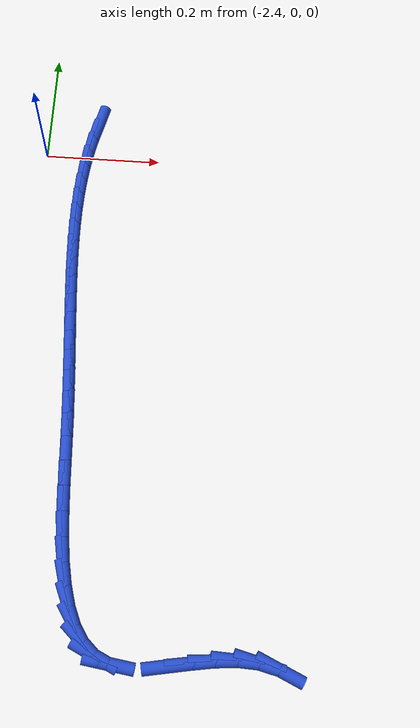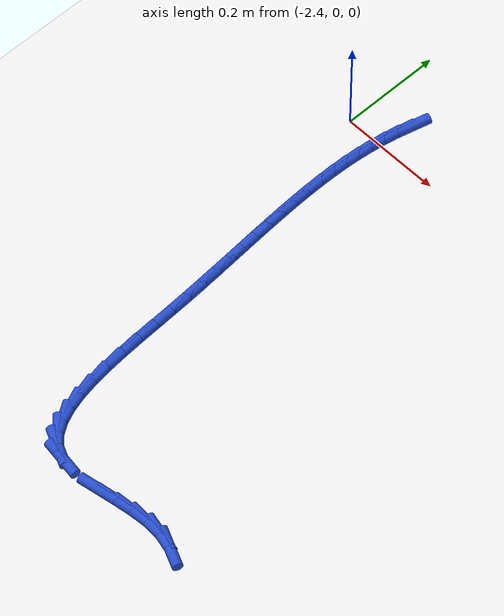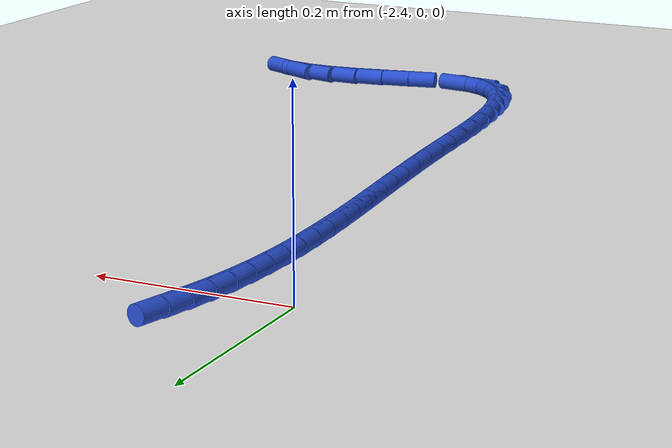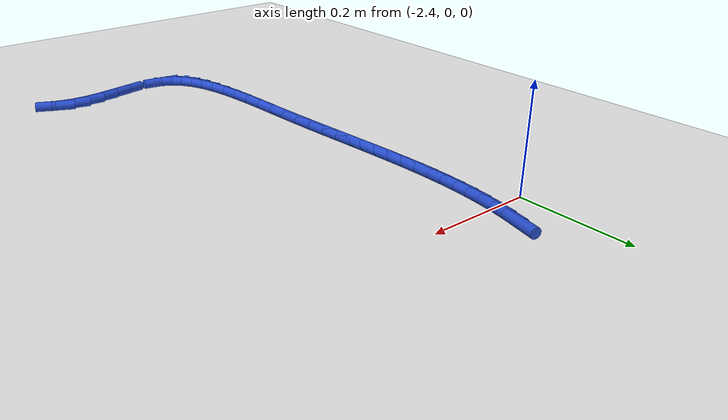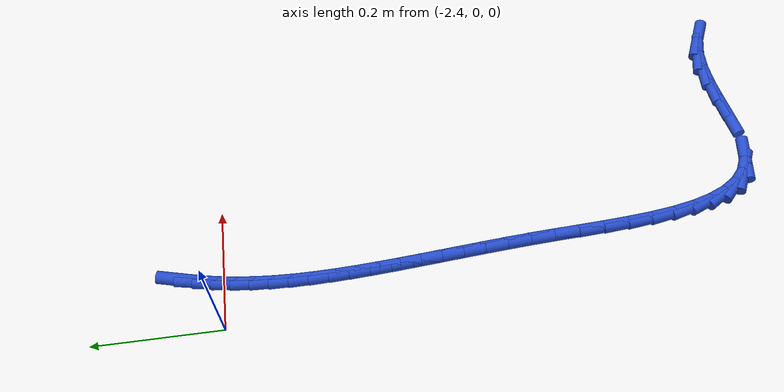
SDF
<sdf version="1.6">
 <world name="default">
  <model name="ground_plane">
   <static>1</static>
   <link name="link">
    <collision name="collision">
     <geometry><plane><normal>0 0 1</normal><size>100 100</size></plane></geometry>
     <surface><friction><ode><mu>100</mu><mu2>50</mu2></ode></friction></surface>
    </collision>
    <visual name="visual">
     <cast_shadows>0</cast_shadows>
     <geometry><plane><normal>0 0 1</normal><size>100 100</size></plane></geometry>
     <material>
      <script><uri>file://media/materials/scripts/gazebo.material</uri><name>Gazebo/WhiteGlow</name></script>
     </material>
    </visual>
   </link>
  </model>
  <model name="line">
   <link name="link_145">
    <pose>-2.3132194270475033 0.06085660251991254 0.01 0 1.57 1.323140194604401</pose>
    <collision name="collision">
     <geometry><cylinder><radius>0.01</radius><length>0.08</length></cylinder></geometry>
    </collision>
    <visual name="visual">
     <material>
      <script><name>Gazebo/Blue</name><uri>file://media/materials/scripts/gazebo.material</uri></script>
     </material>
     <geometry><cylinder><radius>0.01</radius><length>0.08</length></cylinder></geometry>
    </visual>
   </link>
   <link name="link_146">
    <pose>-2.3201641512256517 0.03339045982823994 0.01 0 1.57 1.372035816545154</pose>
    <collision name="collision">
     <geometry><cylinder><radius>0.01</radius><length>0.08</length></cylinder></geometry>
    </collision>
    <visual name="visual">
     <material>
      <script><name>Gazebo/Blue</name><uri>file://media/materials/scripts/gazebo.material</uri></script>
     </material>
     <geometry><cylinder><radius>0.01</radius><length>0.08</length></cylinder></geometry>
    </visual>
   </link>
   <link name="link_147">
    <pose>-2.32573927350403 0.005711361306745023 0.01 0 1.57 1.4177593383744724</pose>
    <collision name="collision">
     <geometry><cylinder><radius>0.01</radius><length>0.08</length></cylinder></geometry>
    </collision>
    <visual name="visual">
     <material>
      <script><name>Gazebo/Blue</name><uri>file://media/materials/scripts/gazebo.material</uri></script>
     </material>
     <geometry><cylinder><radius>0.01</radius><length>0.08</length></cylinder></geometry>
    </visual>
   </link>
   <link name="link_148">
    <pose>-2.3300514669702235 -0.022245778429164635 0.01 0 1.57 1.4598171445845982</pose>
    <collision name="collision">
     <geometry><cylinder><radius>0.01</radius><length>0.08</length></cylinder></geometry>
    </collision>
    <visual name="visual">
     <material>
      <script><name>Gazebo/Blue</name><uri>file://media/materials/scripts/gazebo.material</uri></script>
     </material>
     <geometry><cylinder><radius>0.01</radius><length>0.08</length></cylinder></geometry>
    </visual>
   </link>
   <link name="link_149">
    <pose>-2.333204308811531 -0.05053835793186363 0.01 0 1.57 1.4978204522429994</pose>
    <collision name="collision">
     <geometry><cylinder><radius>0.01</radius><length>0.08</length></cylinder></geometry>
    </collision>
    <visual name="visual">
     <material>
      <script><name>Gazebo/Blue</name><uri>file://media/materials/scripts/gazebo.material</uri></script>
     </material>
     <geometry><cylinder><radius>0.01</radius><length>0.08</length></cylinder></geometry>
    </visual>
   </link>
   <link name="link_150">
    <pose>-2.3353013762152512 -0.07922377575372658 0.01 0 1.57 1.5315220608451527</pose>
    <collision name="collision">
     <geometry><cylinder><radius>0.01</radius><length>0.08</length></cylinder></geometry>
    </collision>
    <visual name="visual">
     <material>
      <script><name>Gazebo/Blue</name><uri>file://media/materials/scripts/gazebo.material</uri></script>
     </material>
     <geometry><cylinder><radius>0.01</radius><length>0.08</length></cylinder></geometry>
    </visual>
   </link>
   <link name="link_151">
    <pose>-2.336446246368685 -0.10835943044712815 0.01 0 1.57 1.5608028265107694</pose>
    <collision name="collision">
     <geometry><cylinder><radius>0.01</radius><length>0.08</length></cylinder></geometry>
    </collision>
    <visual name="visual">
     <material>
      <script><name>Gazebo/Blue</name><uri>file://media/materials/scripts/gazebo.material</uri></script>
     </material>
     <geometry><cylinder><radius>0.01</radius><length>0.08</length></cylinder></geometry>
    </visual>
   </link>
   <link name="link_152">
    <pose>-2.336742496459131 -0.1380027205644429 0.01 0 1.57 -1.5559408263941816</pose>
    <collision name="collision">
     <geometry><cylinder><radius>0.01</radius><length>0.08</length></cylinder></geometry>
    </collision>
    <visual name="visual">
     <material>
      <script><name>Gazebo/Blue</name><uri>file://media/materials/scripts/gazebo.material</uri></script>
     </material>
     <geometry><cylinder><radius>0.01</radius><length>0.08</length></cylinder></geometry>
    </visual>
   </link>
   <link name="link_153">
    <pose>-2.336293703673889 -0.16821104465804548 0.01 0 1.57 -1.535448366821168</pose>
    <collision name="collision">
     <geometry><cylinder><radius>0.01</radius><length>0.08</length></cylinder></geometry>
    </collision>
    <visual name="visual">
     <material>
      <script><name>Gazebo/Blue</name><uri>file://media/materials/scripts/gazebo.material</uri></script>
     </material>
     <geometry><cylinder><radius>0.01</radius><length>0.08</length></cylinder></geometry>
    </visual>
   </link>
   <link name="link_154">
    <pose>-2.3352034452002575 -0.19904180128031043 0.01 0 1.57 -1.5191723971041446</pose>
    <collision name="collision">
     <geometry><cylinder><radius>0.01</radius><length>0.08</length></cylinder></geometry>
    </collision>
    <visual name="visual">
     <material>
      <script><name>Gazebo/Blue</name><uri>file://media/materials/scripts/gazebo.material</uri></script>
     </material>
     <geometry><cylinder><radius>0.01</radius><length>0.08</length></cylinder></geometry>
    </visual>
   </link>
   <link name="link_155">
    <pose>-2.333575298225537 -0.23055238898361355 0.01 0 1.57 -1.5069267932359813</pose>
    <collision name="collision">
     <geometry><cylinder><radius>0.01</radius><length>0.08</length></cylinder></geometry>
    </collision>
    <visual name="visual">
     <material>
      <script><name>Gazebo/Blue</name><uri>file://media/materials/scripts/gazebo.material</uri></script>
     </material>
     <geometry><cylinder><radius>0.01</radius><length>0.08</length></cylinder></geometry>
    </visual>
   </link>
   <link name="link_156">
    <pose>-2.331512839937025 -0.26280020632032725 0.01 0 1.57 -1.4984947531246988</pose>
    <collision name="collision">
     <geometry><cylinder><radius>0.01</radius><length>0.08</length></cylinder></geometry>
    </collision>
    <visual name="visual">
     <material>
      <script><name>Gazebo/Blue</name><uri>file://media/materials/scripts/gazebo.material</uri></script>
     </material>
     <geometry><cylinder><radius>0.01</radius><length>0.08</length></cylinder></geometry>
    </visual>
   </link>
   <link name="link_157">
    <pose>-2.329119647522022 -0.2958426518428273 0.01 0 1.57 -1.4936407470527375</pose>
    <collision name="collision">
     <geometry><cylinder><radius>0.01</radius><length>0.08</length></cylinder></geometry>
    </collision>
    <visual name="visual">
     <material>
      <script><name>Gazebo/Blue</name><uri>file://media/materials/scripts/gazebo.material</uri></script>
     </material>
     <geometry><cylinder><radius>0.01</radius><length>0.08</length></cylinder></geometry>
    </visual>
   </link>
   <link name="link_158">
    <pose>-2.326499298167827 -0.3297371241034882 0.01 0 1.57 -1.4921193606757093</pose>
    <collision name="collision">
     <geometry><cylinder><radius>0.01</radius><length>0.08</length></cylinder></geometry>
    </collision>
    <visual name="visual">
     <material>
      <script><name>Gazebo/Blue</name><uri>file://media/materials/scripts/gazebo.material</uri></script>
     </material>
     <geometry><cylinder><radius>0.01</radius><length>0.08</length></cylinder></geometry>
    </visual>
   </link>
   <link name="link_159">
    <pose>-2.3237553690617396 -0.3645410216546847 0.01 0 1.57 -1.4936815624146509</pose>
    <collision name="collision">
     <geometry><cylinder><radius>0.01</radius><length>0.08</length></cylinder></geometry>
    </collision>
    <visual name="visual">
     <material>
      <script><name>Gazebo/Blue</name><uri>file://media/materials/scripts/gazebo.material</uri></script>
     </material>
     <geometry><cylinder><radius>0.01</radius><length>0.08</length></cylinder></geometry>
    </visual>
   </link>
   <link name="link_160">
    <pose>-2.320991437391059 -0.40031174304879136 0.01 0 1.57 -1.4980789722727548</pose>
    <collision name="collision">
     <geometry><cylinder><radius>0.01</radius><length>0.08</length></cylinder></geometry>
    </collision>
    <visual name="visual">
     <material>
      <script><name>Gazebo/Blue</name><uri>file://media/materials/scripts/gazebo.material</uri></script>
     </material>
     <geometry><cylinder><radius>0.01</radius><length>0.08</length></cylinder></geometry>
    </visual>
   </link>
   <link name="link_161">
    <pose>-2.318311080343084 -0.4371066868381826 0.01 0 1.57 -1.5050666682935006</pose>
    <collision name="collision">
     <geometry><cylinder><radius>0.01</radius><length>0.08</length></cylinder></geometry>
    </collision>
    <visual name="visual">
     <material>
      <script><name>Gazebo/Blue</name><uri>file://media/materials/scripts/gazebo.material</uri></script>
     </material>
     <geometry><cylinder><radius>0.01</radius><length>0.08</length></cylinder></geometry>
    </visual>
   </link>
   <link name="link_162">
    <pose>-2.3158178751051155 -0.4749832515752334 0.01 0 1.57 -1.5144049844638112</pose>
    <collision name="collision">
     <geometry><cylinder><radius>0.01</radius><length>0.08</length></cylinder></geometry>
    </collision>
    <visual name="visual">
     <material>
      <script><name>Gazebo/Blue</name><uri>file://media/materials/scripts/gazebo.material</uri></script>
     </material>
     <geometry><cylinder><radius>0.01</radius><length>0.08</length></cylinder></geometry>
    </visual>
   </link>
   <link name="link_163">
    <pose>-2.3136153988329946 -0.51399883576528 0.01 0 1.57 -1.5234071446429034</pose>
    <collision name="collision">
     <geometry><cylinder><radius>0.01</radius><length>0.08</length></cylinder></geometry>
    </collision>
    <visual name="visual">
     <material>
      <script><name>Gazebo/Blue</name><uri>file://media/materials/scripts/gazebo.material</uri></script>
     </material>
     <geometry><cylinder><radius>0.01</radius><length>0.08</length></cylinder></geometry>
    </visual>
   </link>
   <link name="link_164">
    <pose>-2.311714904492206 -0.5540727803426148 0.01 0 1.57 -1.5227267340600075</pose>
    <collision name="collision">
     <geometry><cylinder><radius>0.01</radius><length>0.08</length></cylinder></geometry>
    </collision>
    <visual name="visual">
     <material>
      <script><name>Gazebo/Blue</name><uri>file://media/materials/scripts/gazebo.material</uri></script>
     </material>
     <geometry><cylinder><radius>0.01</radius><length>0.08</length></cylinder></geometry>
    </visual>
   </link>
   <link name="link_165">
    <pose>-2.3097660585655944 -0.5945837255722677 0.01 0 1.57 -1.5102636622843575</pose>
    <collision name="collision">
     <geometry><cylinder><radius>0.01</radius><length>0.08</length></cylinder></geometry>
    </collision>
    <visual name="visual">
     <material>
      <script><name>Gazebo/Blue</name><uri>file://media/materials/scripts/gazebo.material</uri></script>
     </material>
     <geometry><cylinder><radius>0.01</radius><length>0.08</length></cylinder></geometry>
    </visual>
   </link>
   <link name="link_166">
    <pose>-2.307330018407374 -0.6347779590252921 0.01 0 1.57 -1.4850726307472657</pose>
    <collision name="collision">
     <geometry><cylinder><radius>0.01</radius><length>0.08</length></cylinder></geometry>
    </collision>
    <visual name="visual">
     <material>
      <script><name>Gazebo/Blue</name><uri>file://media/materials/scripts/gazebo.material</uri></script>
     </material>
     <geometry><cylinder><radius>0.01</radius><length>0.08</length></cylinder></geometry>
    </visual>
   </link>
   <link name="link_167">
    <pose>-2.3039679413717646 -0.673901768272742 0.01 0 1.57 -1.444739128580505</pose>
    <collision name="collision">
     <geometry><cylinder><radius>0.01</radius><length>0.08</length></cylinder></geometry>
    </collision>
    <visual name="visual">
     <material>
      <script><name>Gazebo/Blue</name><uri>file://media/materials/scripts/gazebo.material</uri></script>
     </material>
     <geometry><cylinder><radius>0.01</radius><length>0.08</length></cylinder></geometry>
    </visual>
   </link>
   <link name="link_168">
    <pose>-2.299240984812983 -0.7112014408856696 0.01 0 1.57 -1.384882621897007</pose>
    <collision name="collision">
     <geometry><cylinder><radius>0.01</radius><length>0.08</length></cylinder></geometry>
    </collision>
    <visual name="visual">
     <material>
      <script><name>Gazebo/Blue</name><uri>file://media/materials/scripts/gazebo.material</uri></script>
     </material>
     <geometry><cylinder><radius>0.01</radius><length>0.08</length></cylinder></geometry>
    </visual>
   </link>
   <link name="link_169">
    <pose>-2.292710306085246 -0.7459232644351289 0.01 0 1.57 -1.2982612237645454</pose>
    <collision name="collision">
     <geometry><cylinder><radius>0.01</radius><length>0.08</length></cylinder></geometry>
    </collision>
    <visual name="visual">
     <material>
      <script><name>Gazebo/Blue</name><uri>file://media/materials/scripts/gazebo.material</uri></script>
     </material>
     <geometry><cylinder><radius>0.01</radius><length>0.08</length></cylinder></geometry>
    </visual>
   </link>
   <link name="link_170">
    <pose>-2.28393706254277 -0.777313526492172 0.01 0 1.57 -1.1735869439933078</pose>
    <collision name="collision">
     <geometry><cylinder><radius>0.01</radius><length>0.08</length></cylinder></geometry>
    </collision>
    <visual name="visual">
     <material>
      <script><name>Gazebo/Blue</name><uri>file://media/materials/scripts/gazebo.material</uri></script>
     </material>
     <geometry><cylinder><radius>0.01</radius><length>0.08</length></cylinder></geometry>
    </visual>
   </link>
   <link name="link_171">
    <pose>-2.2724824115397735 -0.8046185146278526 0.01 0 1.57 -0.995297759865785</pose>
    <collision name="collision">
     <geometry><cylinder><radius>0.01</radius><length>0.08</length></cylinder></geometry>
    </collision>
    <visual name="visual">
     <material>
      <script><name>Gazebo/Blue</name><uri>file://media/materials/scripts/gazebo.material</uri></script>
     </material>
     <geometry><cylinder><radius>0.01</radius><length>0.08</length></cylinder></geometry>
    </visual>
   </link>
   <link name="link_172">
    <pose>-2.2579075104304733 -0.8270845164132233 0.01 0 1.57 -0.7494014883286272</pose>
    <collision name="collision">
     <geometry><cylinder><radius>0.01</radius><length>0.08</length></cylinder></geometry>
    </collision>
    <visual name="visual">
     <material>
      <script><name>Gazebo/Blue</name><uri>file://media/materials/scripts/gazebo.material</uri></script>
     </material>
     <geometry><cylinder><radius>0.01</radius><length>0.08</length></cylinder></geometry>
    </visual>
   </link>
   <link name="link_173">
    <pose>-2.239773516569085 -0.843957819419338 0.01 0 1.57 -0.44397263584841284</pose>
    <collision name="collision">
     <geometry><cylinder><radius>0.01</radius><length>0.08</length></cylinder></geometry>
    </collision>
    <visual name="visual">
     <material>
      <script><name>Gazebo/Blue</name><uri>file://media/materials/scripts/gazebo.material</uri></script>
     </material>
     <geometry><cylinder><radius>0.01</radius><length>0.08</length></cylinder></geometry>
    </visual>
   </link>
   <link name="link_174">
    <pose>-2.217641587309828 -0.8544847112172484 0.01 0 1.57 -0.14425038622326095</pose>
    <collision name="collision">
     <geometry><cylinder><radius>0.01</radius><length>0.08</length></cylinder></geometry>
    </collision>
    <visual name="visual">
     <material>
      <script><name>Gazebo/Blue</name><uri>file://media/materials/scripts/gazebo.material</uri></script>
     </material>
     <geometry><cylinder><radius>0.01</radius><length>0.08</length></cylinder></geometry>
    </visual>
   </link>
   <link name="link_177">
    <pose>-2.12902037941056 -0.8521651120181329 0.01 0 1.57 0.17718729638199446</pose>
    <collision name="collision">
     <geometry><cylinder><radius>0.01</radius><length>0.08</length></cylinder></geometry>
    </collision>
    <visual name="visual">
     <material>
      <script><name>Gazebo/Blue</name><uri>file://media/materials/scripts/gazebo.material</uri></script>
     </material>
     <geometry><cylinder><radius>0.01</radius><length>0.08</length></cylinder></geometry>
    </visual>
   </link>
   <link name="link_178">
    <pose>-2.0950750518764387 -0.8460866862576809 0.01 0 1.57 0.15752409932430025</pose>
    <collision name="collision">
     <geometry><cylinder><radius>0.01</radius><length>0.08</length></cylinder></geometry>
    </collision>
    <visual name="visual">
     <material>
      <script><name>Gazebo/Blue</name><uri>file://media/materials/scripts/gazebo.material</uri></script>
     </material>
     <geometry><cylinder><radius>0.01</radius><length>0.08</length></cylinder></geometry>
    </visual>
   </link>
   <link name="link_179">
    <pose>-2.060561019681436 -0.8406044743189229 0.01 0 1.57 0.08590203933415522</pose>
    <collision name="collision">
     <geometry><cylinder><radius>0.01</radius><length>0.08</length></cylinder></geometry>
    </collision>
    <visual name="visual">
     <material>
      <script><name>Gazebo/Blue</name><uri>file://media/materials/scripts/gazebo.material</uri></script>
     </material>
     <geometry><cylinder><radius>0.01</radius><length>0.08</length></cylinder></geometry>
    </visual>
   </link>
   <link name="link_180">
    <pose>-2.026458538727979 -0.8376677746433498 0.01 0 1.57 -0.04759713094658231</pose>
    <collision name="collision">
     <geometry><cylinder><radius>0.01</radius><length>0.08</length></cylinder></geometry>
    </collision>
    <visual name="visual">
     <material>
      <script><name>Gazebo/Blue</name><uri>file://media/materials/scripts/gazebo.material</uri></script>
     </material>
     <geometry><cylinder><radius>0.01</radius><length>0.08</length></cylinder></geometry>
    </visual>
   </link>
   <link name="link_181">
    <pose>-1.993747864918495 -0.839225885672453 0.01 0 1.57 -0.2411781616955686</pose>
    <collision name="collision">
     <geometry><cylinder><radius>0.01</radius><length>0.08</length></cylinder></geometry>
    </collision>
    <visual name="visual">
     <material>
      <script><name>Gazebo/Blue</name><uri>file://media/materials/scripts/gazebo.material</uri></script>
     </material>
     <geometry><cylinder><radius>0.01</radius><length>0.08</length></cylinder></geometry>
    </visual>
   </link>
   <link name="link_182">
    <pose>-1.9631745493846327 -0.8467458750999959 0.01 0 1.57 -0.42117369988743214</pose>
    <collision name="collision">
     <geometry><cylinder><radius>0.01</radius><length>0.08</length></cylinder></geometry>
    </collision>
    <visual name="visual">
     <material>
      <script><name>Gazebo/Blue</name><uri>file://media/materials/scripts/gazebo.material</uri></script>
     </material>
     <geometry><cylinder><radius>0.01</radius><length>0.08</length></cylinder></geometry>
    </visual>
   </link>
  </model>
 </world>
</sdf>
